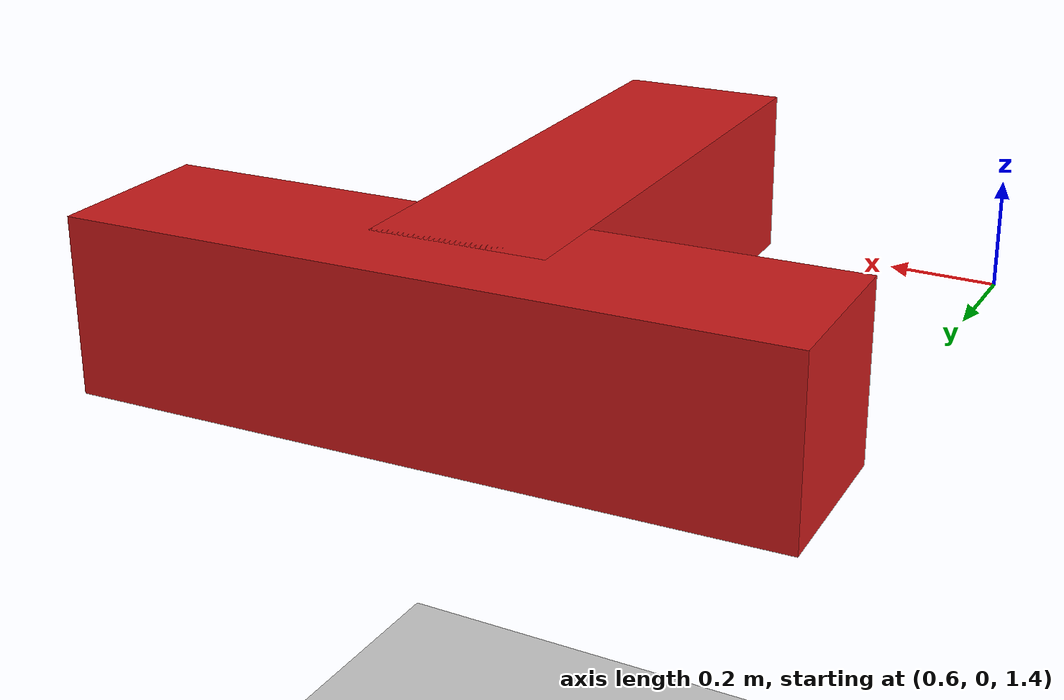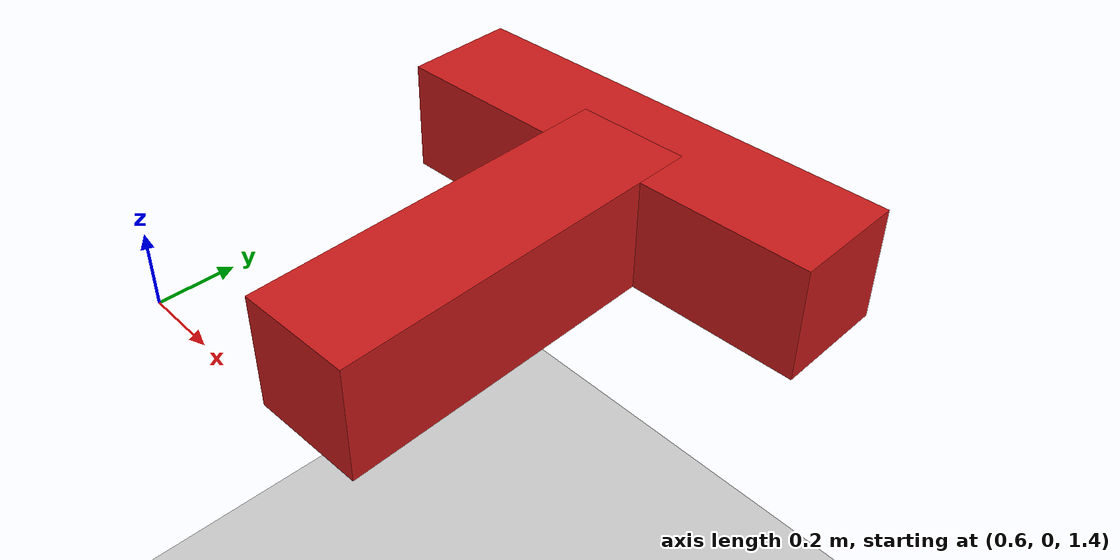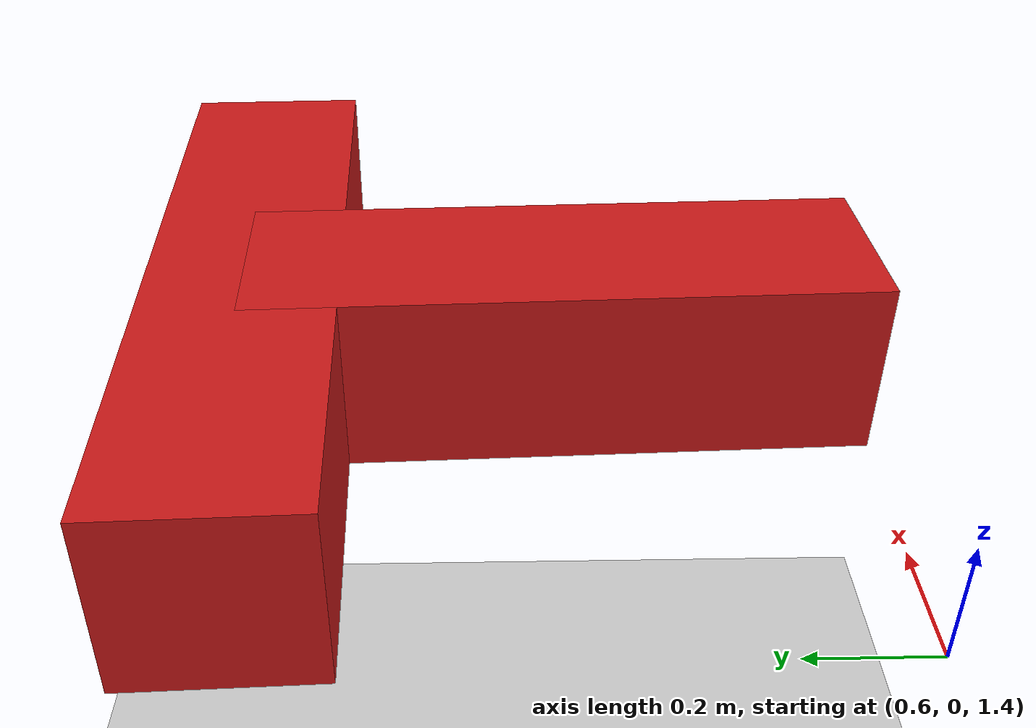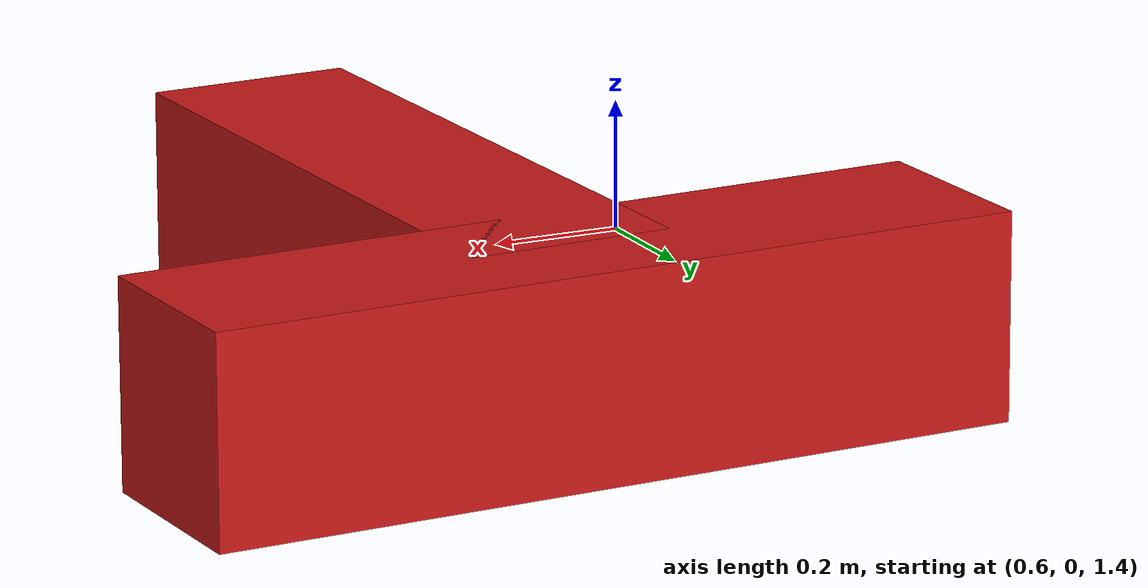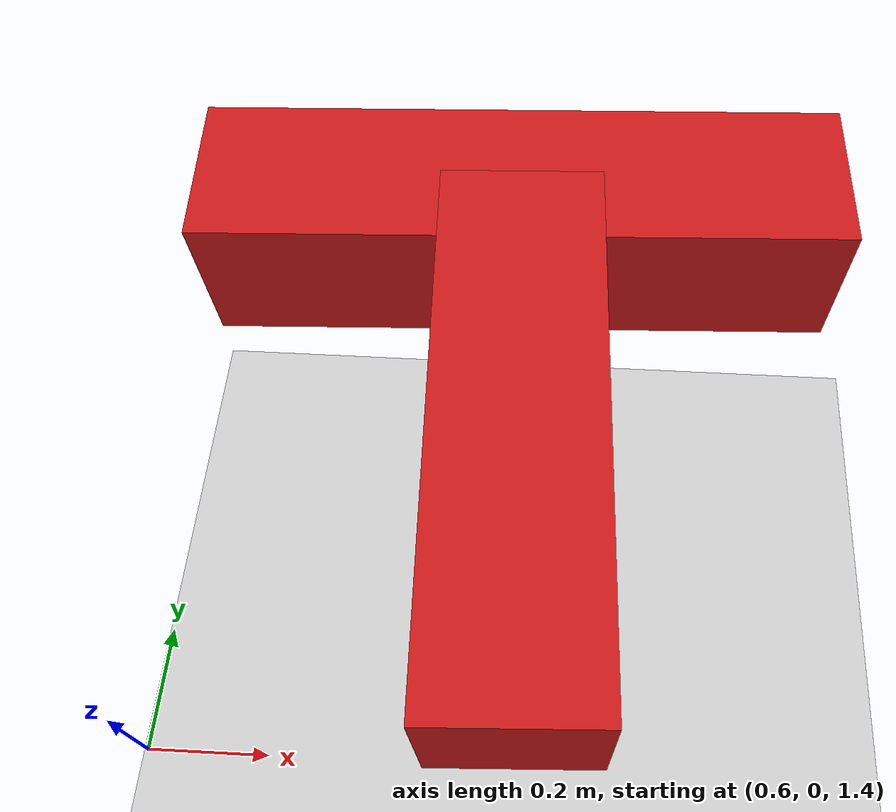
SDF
<?xml version="1.0" ?>
<sdf version="1.6">
  <!-- Keep Gazebo's world frame aligned with MoveIt's static world frame. -->
  <world name="world">
    <physics type="ode">
      <max_step_size>0.001</max_step_size>
      <real_time_update_rate>1000</real_time_update_rate>
      <real_time_factor>1</real_time_factor>
    </physics>
    <include>
      <uri>model://ground_plane</uri>
    </include>
    <include>
      <uri>model://sun</uri>
    </include>

    <model name="t_obstacle">
      <static>true</static>
      <!-- Place the obstacle in front of the roof-mounted Livox sensor so
           its returns survive robot self-filtering. -->
      <pose>1.2 0 1.551063 -1.564690 0 0.041462</pose>

      <link name="stem">
        <pose>0 0 0.5 0 0 0</pose>
        <collision name="collision">
          <geometry>
            <box><size>0.3 0.3 1.0</size></box>
          </geometry>
        </collision>
        <visual name="visual">
          <geometry>
            <box><size>0.3 0.3 1.0</size></box>
          </geometry>
          <material>
            <ambient>0.8 0.1 0.1 1</ambient>
            <diffuse>0.8 0.1 0.1 1</diffuse>
          </material>
        </visual>
      </link>

      <link name="crossbar">
        <pose>0 0 1.0 0 0 0</pose>
        <collision name="collision">
          <geometry>
            <box><size>1.2 0.3 0.3</size></box>
          </geometry>
        </collision>
        <visual name="visual">
          <geometry>
            <box><size>1.2 0.3 0.3</size></box>
          </geometry>
          <material>
            <ambient>0.8 0.1 0.1 1</ambient>
            <diffuse>0.8 0.1 0.1 1</diffuse>
          </material>
        </visual>
      </link>
    </model>
  </world>
</sdf>
